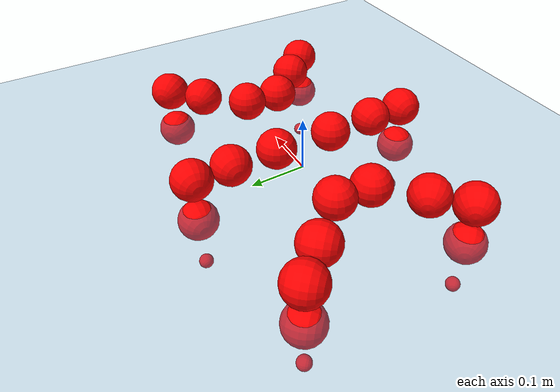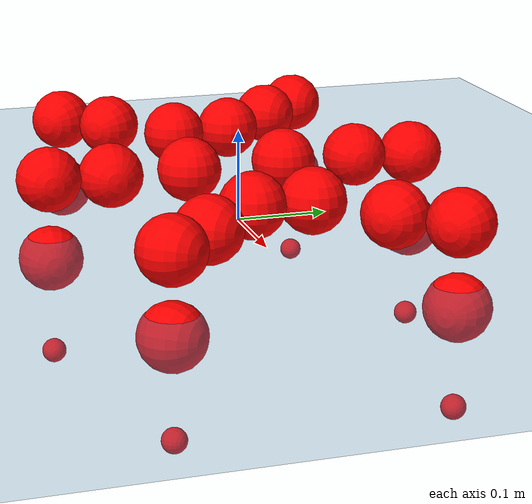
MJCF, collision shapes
<mujoco model="Golem">
  <compiler angle="radian" assetdir="assets" balanceinertia="true" inertiafromgeom="false"/>

  <option timestep="0.005" density="1.2" viscosity="2e-05"/>

  <size nkey="1"/>

  <visual>
    <quality shadowsize="8192"/>
    <map shadowclip="0.5"/>
  </visual>

  <default>
    <default class="/">
      <joint armature="0.01" damping="0.01" frictionloss="0.01"/>
      <geom contype="0" conaffinity="0" group="1" solref="-1000 -80"/>
      <site size="0.01 0.005 0.005" group="5"/>
      <general forcelimited="true" biastype="affine" gainprm="25" biasprm="0 -25 -0.5"/>
      <default class="visual">
        <geom type="mesh" group="2"/>
      </default>
      <default class="collision">
        <geom group="3"/>
      </default>
      <default class="foot">
        <geom size="0.01 0 0" condim="6" group="4" priority="1" solimp="0.015 1 0.01"/>
      </default>
      <default class="reward_collision_sphere">
        <geom group="5" rgba="1 0 0 1"/>
      </default>
    </default>
  </default>

  <asset>
    <texture type="skybox" colorspace="auto" name="//unnamed_texture_0" builtin="gradient" rgb1="0.95 0.95 0.95" rgb2="0.95 0.95 0.95" width="100" height="600"/>
    <texture type="2d" colorspace="auto" name="texplane" builtin="checker" rgb1="0.345 0.575 0.748" rgb2="0.345 0.575 0.748" markrgb="1 1 1" width="512" height="512"/>
    <material name="MatPlane" class="/" texture="texplane" texuniform="true" texrepeat="2 2" specular="0.9"/>
    <mesh name="body" class="/" file="body.stl" scale="0.001 0.001 0.001"/>
    <mesh name="coxa" class="/" file="coxa.stl" scale="0.001 0.001 0.001"/>
    <mesh name="femur" class="/" file="femur.stl" scale="0.001 0.001 0.001"/>
    <mesh name="tibia" class="/" file="tibia.stl" scale="0.001 0.001 0.001"/>
    <mesh name="tarsus" class="/" file="tarsus.stl" scale="0.001 0.001 0.001"/>
  </asset>

  <worldbody>
    <geom name="floor" class="/" size="100 100 0.125" type="plane" group="0" material="MatPlane"/>
    <light name="toplight_shadow" class="/" pos="0 0 5" dir="0.0990148 0.0990148 -0.990148" type="directional" ambient="0.04 0.04 0.04" diffuse="0.55 0.55 0.55" specular="0.12 0.12 0.12"/>
    <light name="toplight_fill" class="/" pos="0 0 5" dir="0.0990148 0.0990148 -0.990148" type="directional" castshadow="false" ambient="0.04 0.04 0.04" diffuse="0.3 0.3 0.3" specular="0.08 0.08 0.08"/>
    <body name="trunk" pos="-0.000758684 -0.000243751 0.000380025" quat="0.999999 0.000307297 -0.000316446 -0.00093103">
      <inertial pos="0.000554487 0.00207431 -0.00119181" quat="0.999999 0.00110826 -0.000632752 -0.000804667" mass="2.34401" diaginertia="0.00874696 0.00101365 0.00859982"/>
      <joint name="//unnamed_joint_0" type="free"/>
      <geom name="//unnamed_geom_1" class="/" pos="0 0 0.0624491" quat="1 0 0 0" type="mesh" rgba="0.9 0.9 0.9 1" mesh="body"/>
      <site name="imu" class="/" pos="0.128851 0.00704494 0.100403" size="0.00863072"/>
      <camera name="track" class="/" pos="0 -1.26776 0" quat="0.707107 0.707107 0 0" mode="trackcom"/>
      <camera name="ego_camera" class="/" pos="0.127344 0 0.0975767" quat="-0.5 -0.5 0.5 0.5"/>
      <body name="coxa_RR" pos="-0.174772 -0.0519146 0.0623801" quat="0.382124 0.000148562 0.000605845 -0.924111">
        <inertial pos="0.000118063 -0.000705398 -0.000518201" quat="0.999932 -0.00443078 -0.0101254 -0.00379589" mass="0.135176" diaginertia="0.00920613 0.00103371 0.00915936"/>
        <joint name="coxa_joint_RR" class="/" pos="0 0 0" axis="0.00219319 0.000934615 -0.999997" range="-3.13972 3.09221" armature="0.00960612" damping="0.00672189" frictionloss="0.00856265"/>
        <geom name="//unnamed_geom_2" class="/" type="mesh" rgba="0.2 0.2 0.2 1" mesh="coxa"/>
        <geom name="//unnamed_geom_3" class="reward_collision_sphere" size="0.0345229" pos="-0.029387 0 0"/>
        <body name="femur_RR" pos="0.0587106 0.00197198 -0.00133227" quat="0.49998 -0.500158 0.499933 0.499929">
          <inertial pos="0.00185361 -0.00102198 0.00042917" quat="0.999961 0.0011437 0.00839083 -0.00233338" mass="0.129706" diaginertia="0.00901829 0.00102598 0.00886211"/>
          <joint name="femur_joint_RR" class="/" pos="0 0 0" axis="-0.00021006 -0.00161666 -0.999999" range="-3.14359 3.13682" armature="0.00869091" damping="0.00424256" frictionloss="0.00824509"/>
          <geom name="//unnamed_geom_4" class="/" type="mesh" rgba="0.9 0.9 0.9 1" mesh="femur"/>
          <geom name="//unnamed_geom_5" class="reward_collision_sphere" size="0.0345229"/>
          <body name="tibia_RR" pos="0.000783777 -0.0674219 0.0004047" quat="6.62259e-05 1 -1.08825e-05 2.17704e-05">
            <inertial pos="-0.000874126 0.000669257 0.000332838" quat="0.999991 0.00104516 -0.00320812 0.00264595" mass="0.131777" diaginertia="0.00887828 0.00101229 0.00891982"/>
            <joint name="tibia_joint_RR" class="/" pos="0 0 0" axis="0.00713947 -0.00222511 0.999972" range="-3.12084 3.14259" armature="0.00861595" damping="0.00167123" frictionloss="0.00853533"/>
            <geom name="//unnamed_geom_6" class="/" type="mesh" rgba="0.2 0.2 0.2 1" mesh="tibia"/>
            <geom name="//unnamed_geom_7" class="reward_collision_sphere" size="0.0345229"/>
            <body name="tarsus_RR" pos="0.085077 0.00185856 0.000213282" quat="1 -6.00424e-05 -4.71245e-06 4.24213e-06">
              <inertial pos="0.0603585 0.000230046 0.000875842" quat="0.500026 0.501029 0.499698 0.499245" mass="0.131562" diaginertia="0.00926435 0.0010417 0.00909735"/>
              <joint name="tarsus_joint_RR" class="/" pos="0 0 0" axis="-0.00234533 0.00107966 0.999997" stiffness="0.000444625" range="-3.13583 3.13955" armature="0.00874369" damping="0.04166" frictionloss="0.008131"/>
              <geom name="//unnamed_geom_8" class="/" type="mesh" rgba="0.9 0.9 0.9 1" mesh="tarsus"/>
              <geom name="foot_1" class="foot" size="0.00878958" pos="0.109712 0 0" quat="0 -0.707107 0 0.707107"/>
              <geom name="//unnamed_geom_10" class="reward_collision_sphere" size="0.0345229"/>
              <geom name="//unnamed_geom_11" class="reward_collision_sphere" size="0.0129461" pos="0.105304 0 0"/>
              <site name="foot_1" class="foot" pos="0.109712 0 0" quat="0 -0.707107 0 0.707107" size="0.00863072"/>
            </body>
          </body>
        </body>
      </body>
      <body name="coxa_RM" pos="-0.0022999 -0.0830325 0.0602977" quat="0.707362 -0.000316611 0.000292479 -0.706851">
        <inertial pos="-0.00155754 0.000441998 0.000914654" quat="0.999999 0.000252761 -0.00100027 -4.78796e-05" mass="0.131985" diaginertia="0.00931522 0.00103995 0.00905424"/>
        <joint name="coxa_joint_RM" class="/" pos="0 0 0" axis="0.00464587 0.000194734 -0.999989" range="-3.11734 3.137" armature="0.00894008" damping="0.0111981" frictionloss="0.00875056"/>
        <geom name="//unnamed_geom_12" class="/" type="mesh" rgba="0.2 0.2 0.2 1" mesh="coxa"/>
        <geom name="//unnamed_geom_13" class="reward_collision_sphere" size="0.0345229" pos="-0.029387 0 0"/>
        <body name="femur_RM" pos="0.0568493 0.0015748 0.000693997" quat="0.499932 -0.500189 0.499962 0.499918">
          <inertial pos="0.000417202 -1.92771e-05 -0.00102225" quat="0.999939 0.00535377 -0.00504364 -0.00823313" mass="0.123697" diaginertia="0.008834 0.000996416 0.00865662"/>
          <joint name="femur_joint_RM" class="/" pos="0 0 0" axis="0.000662391 0.000702094 -1" range="-3.18528 3.15666" armature="0.00885814" damping="0.00887639" frictionloss="0.00860802"/>
          <geom name="//unnamed_geom_14" class="/" type="mesh" rgba="0.9 0.9 0.9 1" mesh="femur"/>
          <geom name="//unnamed_geom_15" class="reward_collision_sphere" size="0.0345229"/>
          <body name="tibia_RM" pos="-0.000523718 -0.0664111 -0.00169953" quat="0.000104839 0.999999 -0.000483715 -0.000980004">
            <inertial pos="-0.000707141 -0.0011189 0.000918892" quat="0.999988 -0.000782292 -0.00249631 -0.00403571" mass="0.128013" diaginertia="0.0089557 0.000994292 0.00853803"/>
            <joint name="tibia_joint_RM" class="/" pos="0 0 0" axis="-0.00108849 -0.000212629 0.999999" range="-3.13837 3.14206" armature="0.00854781" damping="0" frictionloss="0.00898824"/>
            <geom name="//unnamed_geom_16" class="/" type="mesh" rgba="0.2 0.2 0.2 1" mesh="tibia"/>
            <geom name="//unnamed_geom_17" class="reward_collision_sphere" size="0.0345229"/>
            <body name="tarsus_RM" pos="0.0868363 0.000338952 -0.000316372" quat="1 -0.000460842 0.000288789 0.000677301">
              <inertial pos="0.0591101 0.000270277 0.000249609" quat="0.501429 0.495602 0.501514 0.501429" mass="0.127918" diaginertia="0.00899615 0.00101762 0.00874955"/>
              <joint name="tarsus_joint_RM" class="/" pos="0 0 0" axis="-0.000986232 -0.00749459 0.999971" range="-3.15106 3.18465" armature="0.0087153" damping="0.00712432" frictionloss="0.00764227"/>
              <geom name="//unnamed_geom_18" class="/" type="mesh" rgba="0.9 0.9 0.9 1" mesh="tarsus"/>
              <geom name="foot_2" class="foot" size="0.00831536" pos="0.109712 0 0" quat="0 -0.707107 0 0.707107"/>
              <geom name="//unnamed_geom_20" class="reward_collision_sphere" size="0.0345229"/>
              <geom name="//unnamed_geom_21" class="reward_collision_sphere" size="0.0129461" pos="0.105304 0 0"/>
              <site name="foot_2" class="foot" pos="0.109712 0 0" quat="0 -0.707107 0 0.707107" size="0.00863072"/>
            </body>
          </body>
        </body>
      </body>
      <body name="coxa_RF" pos="0.172513 -0.0514184 0.0622434" quat="0.923816 0.000696983 -0.000356983 -0.382836">
        <inertial pos="0.0020761 0.00197595 2.59364e-05" quat="1 7.96868e-05 1.80054e-05 -0.000140209" mass="0.128843" diaginertia="0.00911255 0.00102402 0.00883798"/>
        <joint name="coxa_joint_RF" class="/" pos="0 0 0" axis="0.000104899 -4.00195e-05 -1" range="-3.15281 3.09851" armature="0.00908247" damping="0.0121904" frictionloss="0.00877447"/>
        <geom name="//unnamed_geom_22" class="/" type="mesh" rgba="0.2 0.2 0.2 1" mesh="coxa"/>
        <geom name="//unnamed_geom_23" class="reward_collision_sphere" size="0.0345229" pos="-0.029387 0 0"/>
        <body name="femur_RF" pos="0.0577789 -0.000350942 -0.000433073" quat="0.500497 -0.49968 0.500226 0.499596">
          <inertial pos="-0.000106875 -0.00013523 0.00229957" quat="0.999972 0.0016504 -0.00682949 0.0025264" mass="0.125443" diaginertia="0.00876525 0.000995302 0.00839387"/>
          <joint name="femur_joint_RF" class="/" pos="0 0 0" axis="0.00652857 0.00936896 -0.999935" range="-3.14935 3.14274" armature="0.00969381" damping="0.0090268" frictionloss="0.00904503"/>
          <geom name="//unnamed_geom_24" class="/" type="mesh" rgba="0.9 0.9 0.9 1" mesh="femur"/>
          <geom name="//unnamed_geom_25" class="reward_collision_sphere" size="0.0345229"/>
          <body name="tibia_RF" pos="0.000548726 -0.0685298 -0.000581416" quat="0.000270599 1 0.000148903 -7.39394e-05">
            <inertial pos="0.000247876 0.000309455 0.000404646" quat="0.999985 0.00272125 0.00441637 0.00190802" mass="0.127387" diaginertia="0.00889518 0.00100596 0.00897912"/>
            <joint name="tibia_joint_RF" class="/" pos="0 0 0" axis="-2.16237e-05 0.00191535 0.999998" range="-3.13885 3.17764" armature="0.0087537" damping="0.00826474" frictionloss="0.00819312"/>
            <geom name="//unnamed_geom_26" class="/" type="mesh" rgba="0.2 0.2 0.2 1" mesh="tibia"/>
            <geom name="//unnamed_geom_27" class="reward_collision_sphere" size="0.0345229"/>
            <body name="tarsus_RF" pos="0.0850292 -0.000214214 0.000854332" quat="0.999999 0.000609066 0.000809053 -0.000370035">
              <inertial pos="0.0586304 -3.03938e-05 -2.07915e-05" quat="0.500406 0.499461 0.500864 0.499268" mass="0.128538" diaginertia="0.00898766 0.0010165 0.00865019"/>
              <joint name="tarsus_joint_RF" class="/" pos="0 0 0" axis="0.00496939 0.00677704 0.999965" range="-3.14083 3.12879" armature="0.0085932" damping="0.0115055" frictionloss="0.00865674"/>
              <geom name="//unnamed_geom_28" class="/" type="mesh" rgba="0.9 0.9 0.9 1" mesh="tarsus"/>
              <geom name="foot_3" class="foot" size="0.00901894" pos="0.109712 0 0" quat="0 -0.707107 0 0.707107"/>
              <geom name="//unnamed_geom_30" class="reward_collision_sphere" size="0.0345229"/>
              <geom name="//unnamed_geom_31" class="reward_collision_sphere" size="0.0129461" pos="0.105304 0 0"/>
              <site name="foot_3" class="foot" pos="0.109712 0 0" quat="0 -0.707107 0 0.707107" size="0.00863072"/>
            </body>
          </body>
        </body>
      </body>
      <body name="coxa_LR" pos="-0.172411 0.0539035 0.064322" quat="0.38273 -0.000236099 0.000769678 0.92386">
        <inertial pos="0.00068734 -0.000315504 -0.000446139" quat="1 -0.000614747 0.000410538 -0.000257271" mass="0.129585" diaginertia="0.00883943 0.00102513 0.00858752"/>
        <joint name="coxa_joint_LR" class="/" pos="0 0 0" axis="-0.00374661 0.0112527 -0.99993" range="-3.11233 3.13837" armature="0.00893484" damping="0.00617754" frictionloss="0.00849642"/>
        <geom name="//unnamed_geom_32" class="/" type="mesh" rgba="0.2 0.2 0.2 1" mesh="coxa"/>
        <geom name="//unnamed_geom_33" class="reward_collision_sphere" size="0.0345229" pos="-0.029387 0 0"/>
        <body name="femur_LR" pos="0.0608568 -0.00222305 -0.00198087" quat="0.499909 -0.499593 0.500308 0.500189">
          <inertial pos="-0.000455282 -0.000420533 -0.000795026" quat="0.99999 0.00107447 -0.00422085 0.000975777" mass="0.126919" diaginertia="0.00895941 0.00102699 0.008847"/>
          <joint name="femur_joint_LR" class="/" pos="0 0 0" axis="-0.00202937 0.00383083 0.999991" range="-3.17634 3.17358" armature="0.00858115" damping="0" frictionloss="0.00905239"/>
          <geom name="//unnamed_geom_34" class="/" type="mesh" rgba="0.9 0.9 0.9 1" mesh="femur"/>
          <geom name="//unnamed_geom_35" class="reward_collision_sphere" size="0.0345229"/>
          <body name="tibia_LR" pos="0.000534727 -0.0690726 -0.0021045" quat="0.000407833 1 -4.97209e-05 -0.000168068">
            <inertial pos="-0.00253025 0.00114316 -0.00178293" quat="1 -0.000186521 -0.000482612 0.000148031" mass="0.128458" diaginertia="0.00897059 0.00104186 0.0087944"/>
            <joint name="tibia_joint_LR" class="/" pos="0 0 0" axis="-0.00127125 0.00161576 -0.999998" range="-3.1012 3.16061" armature="0.00883953" damping="0.00284623" frictionloss="0.00905947"/>
            <geom name="//unnamed_geom_36" class="/" type="mesh" rgba="0.2 0.2 0.2 1" mesh="tibia"/>
            <geom name="//unnamed_geom_37" class="reward_collision_sphere" size="0.0345229"/>
            <body name="tarsus_LR" pos="0.0878176 0.00076259 0.000668499" quat="1 -4.27168e-05 0.000209989 6.24773e-05">
              <inertial pos="0.0594088 4.60002e-05 -0.000806005" quat="0.500507 0.500028 0.50095 0.498512" mass="0.132513" diaginertia="0.00924119 0.00105076 0.00903488"/>
              <joint name="tarsus_joint_LR" class="/" pos="0 0 0" axis="0.00343341 -0.0110836 -0.999933" stiffness="0.000604734" range="-3.13925 3.12032" armature="0.00872267" damping="0.0270906" frictionloss="0.00905896"/>
              <geom name="//unnamed_geom_38" class="/" type="mesh" rgba="0.9 0.9 0.9 1" mesh="tarsus"/>
              <geom name="foot_4" class="foot" size="0.00821017" pos="0.109712 0 0" quat="0.707107 0 -0.707107 0"/>
              <geom name="//unnamed_geom_40" class="reward_collision_sphere" size="0.0345229"/>
              <geom name="//unnamed_geom_41" class="reward_collision_sphere" size="0.0129461" pos="0.105304 0 0"/>
              <site name="foot_4" class="foot" pos="0.109712 0 0" quat="0.707107 0 -0.707107 0" size="0.00863072"/>
            </body>
          </body>
        </body>
      </body>
      <body name="coxa_LM" pos="-0.00171895 0.0813754 0.0626224" quat="0.706988 5.51458e-05 0.000136751 0.707225">
        <inertial pos="0.00227495 0.00214587 -0.000243375" quat="1 -5.36539e-06 -0.000120925 2.22147e-05" mass="0.128358" diaginertia="0.00889062 0.00102045 0.00881539"/>
        <joint name="coxa_joint_LM" class="/" pos="0 0 0" axis="0.00111156 0.000231341 -0.999999" range="-3.137 3.13686" armature="0.00926609" damping="0.00683512" frictionloss="0.00861068"/>
        <geom name="//unnamed_geom_42" class="/" type="mesh" rgba="0.2 0.2 0.2 1" mesh="coxa"/>
        <geom name="//unnamed_geom_43" class="reward_collision_sphere" size="0.0345229" pos="-0.029387 0 0"/>
        <body name="femur_LM" pos="0.0534078 0.00082077 -0.000684064" quat="0.499189 -0.500374 0.500737 0.499698">
          <inertial pos="-0.000503923 -0.000214017 0.000316883" quat="0.999986 -0.00477062 0.00157427 -0.0016047" mass="0.127197" diaginertia="0.00903614 0.00100649 0.00866645"/>
          <joint name="femur_joint_LM" class="/" pos="0 0 0" axis="-0.000128543 -0.00129961 0.999999" range="-3.15849 3.13772" armature="0.00770005" damping="0" frictionloss="0.0088613"/>
          <geom name="//unnamed_geom_44" class="/" type="mesh" rgba="0.9 0.9 0.9 1" mesh="femur"/>
          <geom name="//unnamed_geom_45" class="reward_collision_sphere" size="0.0345229"/>
          <body name="tibia_LM" pos="0.00221342 -0.0665844 -0.000354738" quat="6.28183e-05 1 8.06843e-05 -1.11589e-05">
            <inertial pos="-0.00131857 -0.000819264 -0.000480095" quat="0.999987 0.00324014 0.00276264 -0.00272843" mass="0.125763" diaginertia="0.00894504 0.00103647 0.00901613"/>
            <joint name="tibia_joint_LM" class="/" pos="0 0 0" axis="0.0020911 -0.000871944 -0.999997" stiffness="3.34859e-05" range="-3.12036 3.15544" armature="0.00863783" damping="0" frictionloss="0.00859858"/>
            <geom name="//unnamed_geom_46" class="/" type="mesh" rgba="0.2 0.2 0.2 1" mesh="tibia"/>
            <geom name="//unnamed_geom_47" class="reward_collision_sphere" size="0.0345229"/>
            <body name="tarsus_LM" pos="0.086145 0.00138596 -0.00176749" quat="1 5.25283e-05 -2.75289e-05 -6.53751e-05">
              <inertial pos="0.0601907 -0.000884746 -5.23775e-05" quat="0.500555 0.500937 0.498888 0.499618" mass="0.134995" diaginertia="0.00914026 0.00105101 0.00885375"/>
              <joint name="tarsus_joint_LM" class="/" pos="0 0 0" axis="0.00383814 0.00469458 -0.999982" stiffness="0.00594769" range="-3.13861 3.12925" armature="0.00872513" damping="0.0151922" frictionloss="0.0086567"/>
              <geom name="//unnamed_geom_48" class="/" type="mesh" rgba="0.9 0.9 0.9 1" mesh="tarsus"/>
              <geom name="foot_5" class="foot" size="0.00835128" pos="0.109712 0 0" quat="0.707107 0 -0.707107 0"/>
              <geom name="//unnamed_geom_50" class="reward_collision_sphere" size="0.0345229"/>
              <geom name="//unnamed_geom_51" class="reward_collision_sphere" size="0.0129461" pos="0.105304 0 0"/>
              <site name="foot_5" class="foot" pos="0.109712 0 0" quat="0.707107 0 -0.707107 0" size="0.00863072"/>
            </body>
          </body>
        </body>
      </body>
      <body name="coxa_LF" pos="0.174766 0.0528853 0.0626529" quat="0.923788 3.6386e-05 0.000219991 0.382904">
        <inertial pos="0.000218265 -0.000746322 -6.73469e-05" quat="1 0.000302559 -0.000212692 -8.23403e-05" mass="0.12579" diaginertia="0.00890477 0.0010225 0.00882325"/>
        <joint name="coxa_joint_LF" class="/" pos="0 0 0" axis="0.00310618 -0.0042792 -0.999986" range="-3.12825 3.15293" armature="0.00832698" damping="0.00384851" frictionloss="0.00868183"/>
        <geom name="//unnamed_geom_52" class="/" type="mesh" rgba="0.2 0.2 0.2 1" mesh="coxa"/>
        <geom name="//unnamed_geom_53" class="reward_collision_sphere" size="0.0345229" pos="-0.029387 0 0"/>
        <body name="femur_LF" pos="0.0583196 0.00269389 -0.00261352" quat="0.500339 -0.500184 0.499858 0.49962">
          <inertial pos="-0.00156683 -0.000800116 0.000875608" quat="1 2.71966e-06 0.000134306 -0.000164076" mass="0.129847" diaginertia="0.00891913 0.0010115 0.00882431"/>
          <joint name="femur_joint_LF" class="/" pos="0 0 0" axis="0.00926288 -0.00139797 0.999956" range="-3.1421 3.10307" armature="0.00813599" damping="0.00137763" frictionloss="0.00838854"/>
          <geom name="//unnamed_geom_54" class="/" type="mesh" rgba="0.9 0.9 0.9 1" mesh="femur"/>
          <geom name="//unnamed_geom_55" class="reward_collision_sphere" size="0.0345229"/>
          <body name="tibia_LF" pos="-0.00144435 -0.0686821 0.000503392" quat="-0.000135375 1 -0.000223488 6.13624e-05">
            <inertial pos="-0.00103718 -0.000448332 5.85627e-05" quat="0.999957 -0.00473944 0.00551036 -0.00580171" mass="0.126896" diaginertia="0.00899607 0.00100833 0.00877403"/>
            <joint name="tibia_joint_LF" class="/" pos="0 0 0" axis="-0.00535225 -0.00104417 -0.999985" range="-3.14366 3.14561" armature="0.00762709" damping="0.00224382" frictionloss="0.00863258"/>
            <geom name="//unnamed_geom_56" class="/" type="mesh" rgba="0.2 0.2 0.2 1" mesh="tibia"/>
            <geom name="//unnamed_geom_57" class="reward_collision_sphere" size="0.0345229"/>
            <body name="tarsus_LF" pos="0.0864932 -0.00052886 0.000355497" quat="0.999999 -0.000703132 -0.000874894 0.000359284">
              <inertial pos="0.0601747 -0.00132292 0.000565195" quat="0.499397 0.500926 0.49883 0.500844" mass="0.127624" diaginertia="0.00900573 0.00100981 0.00874946"/>
              <joint name="tarsus_joint_LF" class="/" pos="0 0 0" axis="-0.00752525 -0.00525932 -0.999958" stiffness="0.00213165" range="-3.1087 3.14588" armature="0.00885016" damping="0.016474" frictionloss="0.00868584"/>
              <geom name="//unnamed_geom_58" class="/" type="mesh" rgba="0.9 0.9 0.9 1" mesh="tarsus"/>
              <geom name="foot_6" class="foot" size="0.00815284" pos="0.109712 0 0" quat="0.707107 0 -0.707107 0"/>
              <geom name="//unnamed_geom_60" class="reward_collision_sphere" size="0.0345229"/>
              <geom name="//unnamed_geom_61" class="reward_collision_sphere" size="0.0129461" pos="0.105304 0 0"/>
              <site name="foot_6" class="foot" pos="0.109712 0 0" quat="0.707107 0 -0.707107 0" size="0.00863072"/>
            </body>
          </body>
        </body>
      </body>
    </body>
  </worldbody>

  <contact>
    <pair class="/" geom1="floor" geom2="foot_1" name="//unnamed_contact_0"/>
    <pair class="/" geom1="floor" geom2="foot_2" name="//unnamed_contact_1"/>
    <pair class="/" geom1="floor" geom2="foot_3" name="//unnamed_contact_2"/>
    <pair class="/" geom1="floor" geom2="foot_4" name="//unnamed_contact_3"/>
    <pair class="/" geom1="floor" geom2="foot_5" name="//unnamed_contact_4"/>
    <pair class="/" geom1="floor" geom2="foot_6" name="//unnamed_contact_5"/>
  </contact>

  <actuator>
    <general name="coxa_joint_RR" class="/" joint="coxa_joint_RR" forcerange="-6.42499 6.42499" gainprm="20.6543" biasprm="0 -20.6543 -0.442525"/>
    <general name="femur_joint_RR" class="/" joint="femur_joint_RR" forcerange="-6.31863 6.31863" gainprm="20.6543" biasprm="0 -20.6543 -0.442525"/>
    <general name="tibia_joint_RR" class="/" joint="tibia_joint_RR" forcerange="-6.36006 6.36006" gainprm="20.6543" biasprm="0 -20.6543 -0.442525"/>
    <general name="tarsus_joint_RR" class="/" joint="tarsus_joint_RR" forcerange="-6.50982 6.50982" gainprm="20.6543" biasprm="0 -20.6543 -0.442525"/>
    <general name="coxa_joint_RM" class="/" joint="coxa_joint_RM" forcerange="-6.53301 6.53301" gainprm="20.6543" biasprm="0 -20.6543 -0.442525"/>
    <general name="femur_joint_RM" class="/" joint="femur_joint_RM" forcerange="-6.04786 6.04786" gainprm="20.6543" biasprm="0 -20.6543 -0.442525"/>
    <general name="tibia_joint_RM" class="/" joint="tibia_joint_RM" forcerange="-6.32879 6.32879" gainprm="20.6543" biasprm="0 -20.6543 -0.442525"/>
    <general name="tarsus_joint_RM" class="/" joint="tarsus_joint_RM" forcerange="-6.06231 6.06231" gainprm="20.6543" biasprm="0 -20.6543 -0.442525"/>
    <general name="coxa_joint_RF" class="/" joint="coxa_joint_RF" forcerange="-5.98731 5.98731" gainprm="20.6543" biasprm="0 -20.6543 -0.442525"/>
    <general name="femur_joint_RF" class="/" joint="femur_joint_RF" forcerange="-6.10207 6.10207" gainprm="20.6543" biasprm="0 -20.6543 -0.442525"/>
    <general name="tibia_joint_RF" class="/" joint="tibia_joint_RF" forcerange="-6.45345 6.45345" gainprm="20.6543" biasprm="0 -20.6543 -0.442525"/>
    <general name="tarsus_joint_RF" class="/" joint="tarsus_joint_RF" forcerange="-6.10594 6.10594" gainprm="20.6543" biasprm="0 -20.6543 -0.442525"/>
    <general name="coxa_joint_LR" class="/" joint="coxa_joint_LR" forcerange="-6.19888 6.19888" gainprm="20.6543" biasprm="0 -20.6543 -0.442525"/>
    <general name="femur_joint_LR" class="/" joint="femur_joint_LR" forcerange="-6.38699 6.38699" gainprm="20.6543" biasprm="0 -20.6543 -0.442525"/>
    <general name="tibia_joint_LR" class="/" joint="tibia_joint_LR" forcerange="-5.82697 5.82697" gainprm="20.6543" biasprm="0 -20.6543 -0.442525"/>
    <general name="tarsus_joint_LR" class="/" joint="tarsus_joint_LR" forcerange="-6.81727 6.81727" gainprm="20.6543" biasprm="0 -20.6543 -0.442525"/>
    <general name="coxa_joint_LM" class="/" joint="coxa_joint_LM" forcerange="-6.17779 6.17779" gainprm="20.6543" biasprm="0 -20.6543 -0.442525"/>
    <general name="femur_joint_LM" class="/" joint="femur_joint_LM" forcerange="-6.26851 6.26851" gainprm="20.6543" biasprm="0 -20.6543 -0.442525"/>
    <general name="tibia_joint_LM" class="/" joint="tibia_joint_LM" forcerange="-6.29715 6.29715" gainprm="20.6543" biasprm="0 -20.6543 -0.442525"/>
    <general name="tarsus_joint_LM" class="/" joint="tarsus_joint_LM" forcerange="-6.51835 6.51835" gainprm="20.6543" biasprm="0 -20.6543 -0.442525"/>
    <general name="coxa_joint_LF" class="/" joint="coxa_joint_LF" forcerange="-6.25547 6.25547" gainprm="20.6543" biasprm="0 -20.6543 -0.442525"/>
    <general name="femur_joint_LF" class="/" joint="femur_joint_LF" forcerange="-6.28773 6.28773" gainprm="20.6543" biasprm="0 -20.6543 -0.442525"/>
    <general name="tibia_joint_LF" class="/" joint="tibia_joint_LF" forcerange="-6.0619 6.0619" gainprm="20.6543" biasprm="0 -20.6543 -0.442525"/>
    <general name="tarsus_joint_LF" class="/" joint="tarsus_joint_LF" forcerange="-6.17628 6.17628" gainprm="20.6543" biasprm="0 -20.6543 -0.442525"/>
  </actuator>

  <sensor>
    <gyro site="imu" name="imu_angular_velocity"/>
    <velocimeter site="imu" name="imu_linear_velocity"/>
    <framelinvel objtype="site" objname="foot_1" name="foot_1_global_linear_velocity"/>
    <framelinvel objtype="site" objname="foot_2" name="foot_2_global_linear_velocity"/>
    <framelinvel objtype="site" objname="foot_3" name="foot_3_global_linear_velocity"/>
    <framelinvel objtype="site" objname="foot_4" name="foot_4_global_linear_velocity"/>
    <framelinvel objtype="site" objname="foot_5" name="foot_5_global_linear_velocity"/>
    <framelinvel objtype="site" objname="foot_6" name="foot_6_global_linear_velocity"/>
  </sensor>

  <keyframe>
    <key name="home" qpos="0 0 0.1457 1 0 0 0 0 0 0 0 0 0 0 0 0 0 0 0 0 0 0 0 0 0 0 0 0 0 0 0"/>
  </keyframe>
</mujoco>
